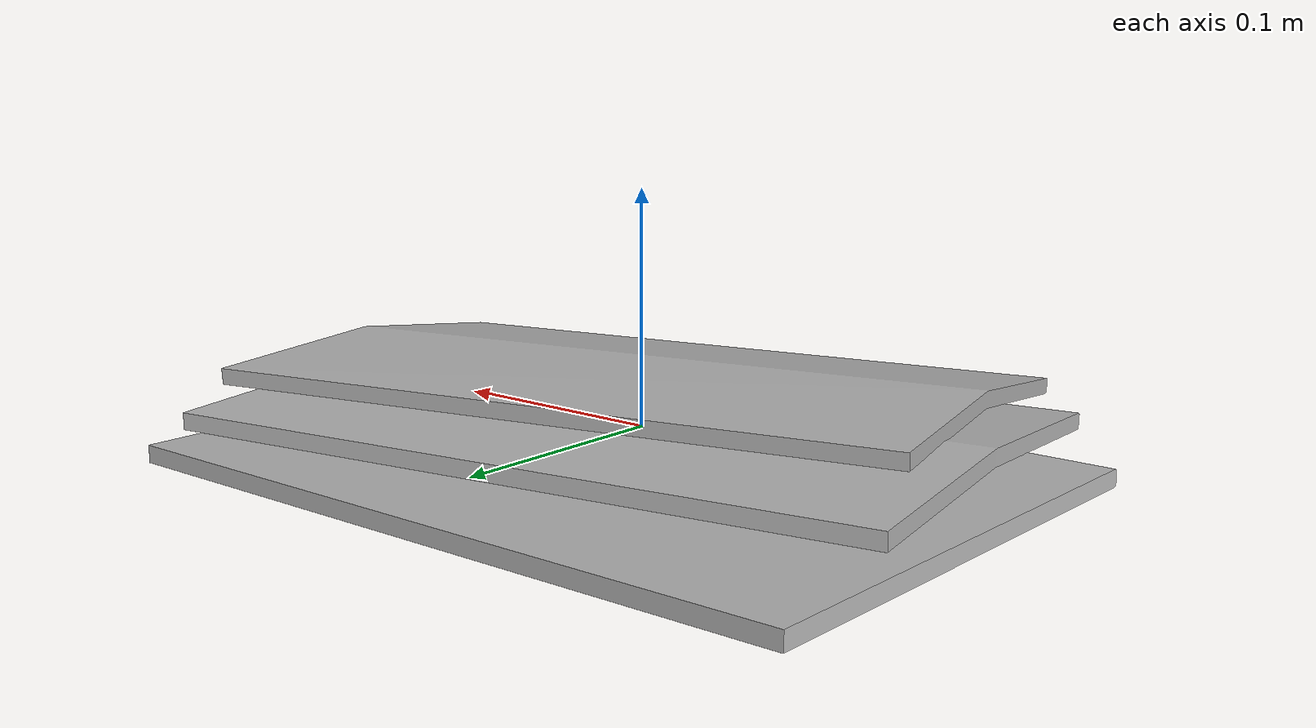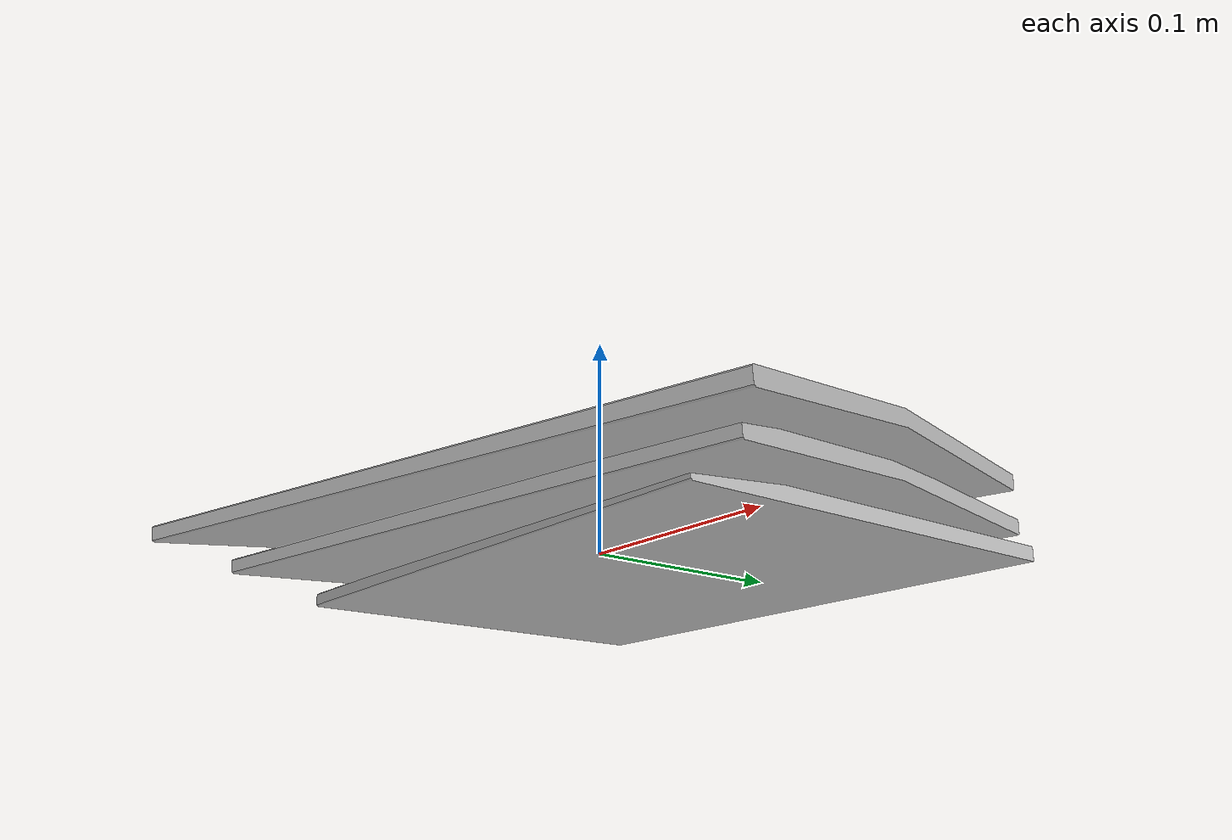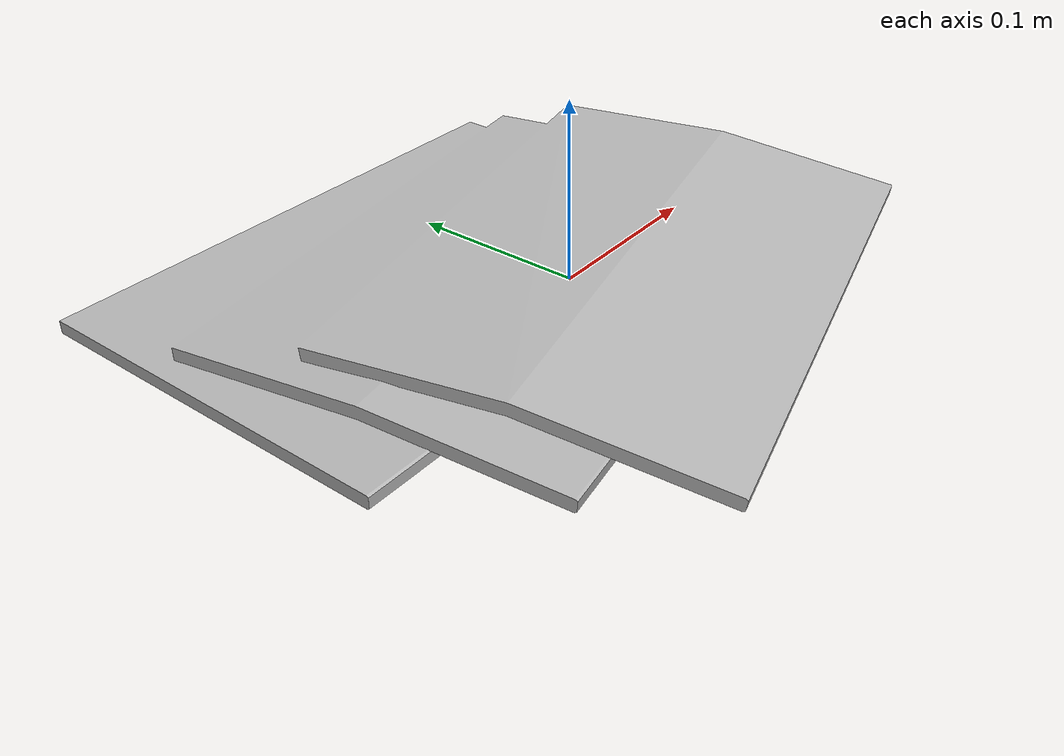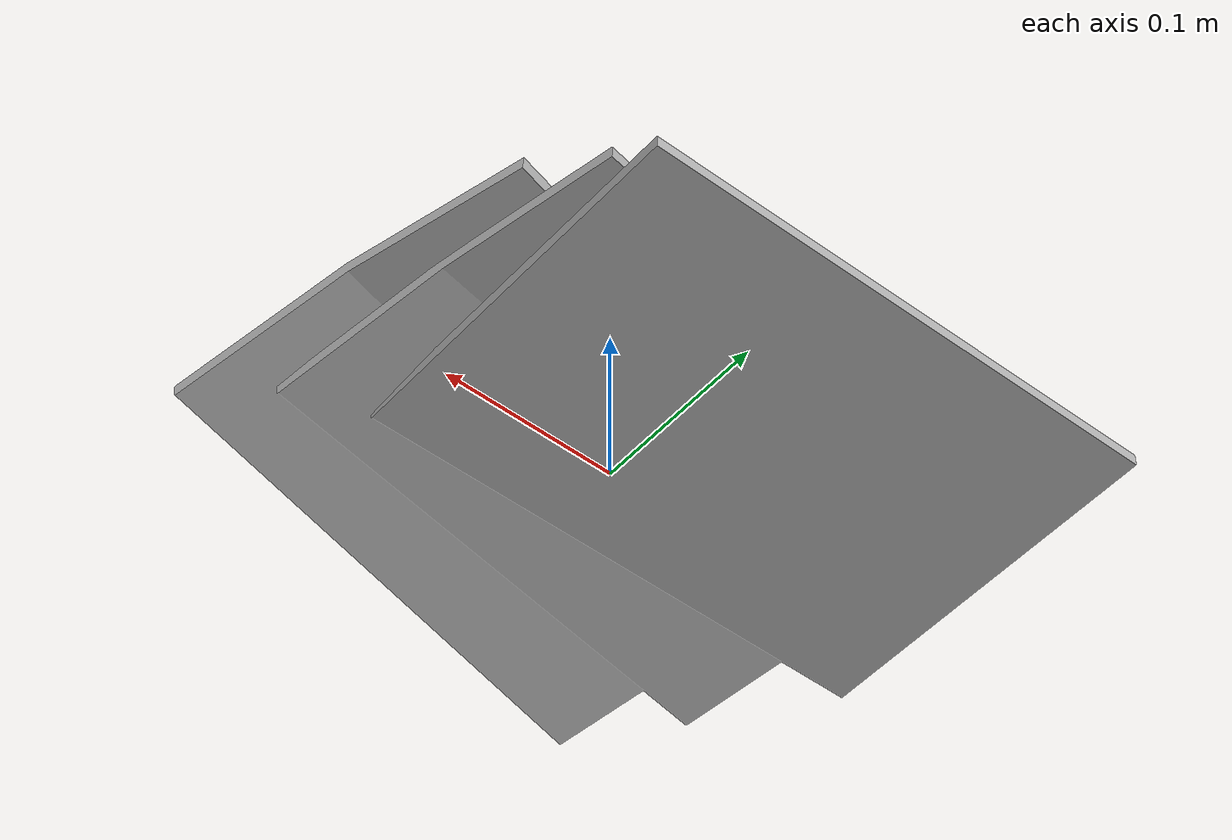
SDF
<?xml version='1.0'?>
<sdf version='1.4'>
  <model name='s__1813'>
    <pose>0 0 0 0 0 0</pose>
    <static>true</static>
    <link name='link'>
      <collision name='collision'>
        <pose>0 0 0 0 0 0</pose>
        <geometry>
          <box>
            <size>0.379975 0.329873 2</size>
          </box>
        </geometry>
      </collision>
      <visual name='visual'>
        <pose>0 0 0 0 0 0</pose>
        <geometry>
          <mesh><uri>model://s__1813/s__1813.dae</uri></mesh>
        </geometry>
      </visual>
    </link>
  </model>
</sdf>
